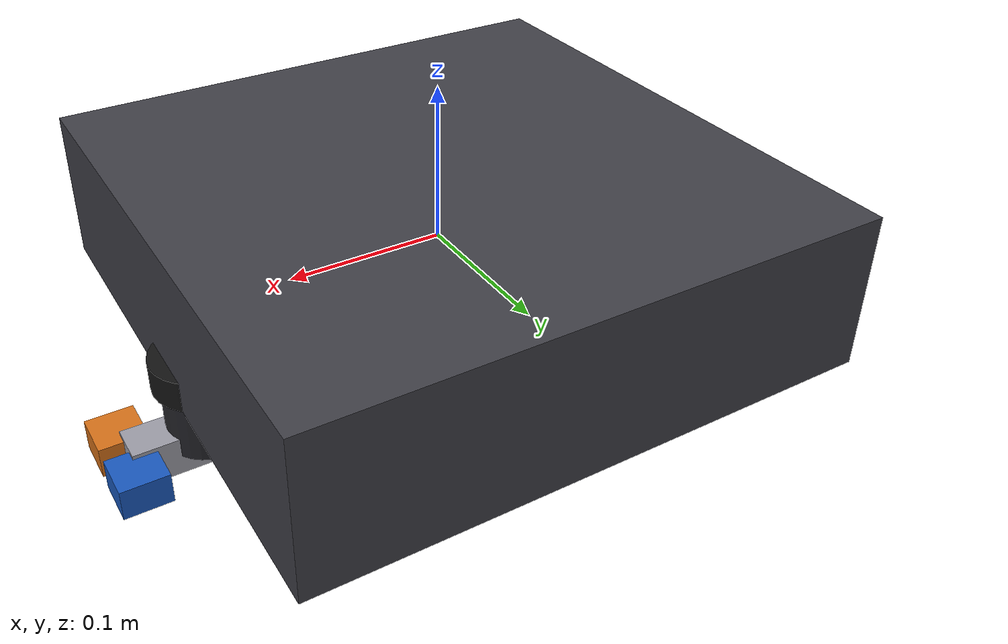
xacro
<?xml version="1.0"?>
<robot name="c3_drone_with_gimbal" xmlns:xacro="http://www.ros.org/wiki/xacro">
  <xacro:arg name="parent_link" default="base_link"/>
  <xacro:arg name="gimbal_mount_xyz" default="0.16 0.0 -0.04"/>
  <xacro:arg name="gimbal_mount_rpy" default="0 0 0"/>
  <xacro:arg name="tc_camera_xyz" default="0.050 0.020 0.0"/>
  <xacro:arg name="tc_camera_rpy" default="0 0 0"/>
  <xacro:arg name="gated_camera_xyz" default="0.050 -0.020 0.0"/>
  <xacro:arg name="gated_camera_rpy" default="0 0 0"/>

  <link name="base_link">
    <inertial>
      <origin xyz="0 0 0" rpy="0 0 0"/>
      <mass value="1.5"/>
      <inertia ixx="0.02" ixy="0.0" ixz="0.0" iyy="0.02" iyz="0.0" izz="0.04"/>
    </inertial>
    <visual>
      <origin xyz="0 0 0" rpy="0 0 0"/>
      <geometry>
        <box size="0.36 0.36 0.10"/>
      </geometry>
      <material name="drone_gray">
        <color rgba="0.25 0.25 0.28 1.0"/>
      </material>
    </visual>
    <collision>
      <origin xyz="0 0 0" rpy="0 0 0"/>
      <geometry>
        <box size="0.36 0.36 0.10"/>
      </geometry>
    </collision>
  </link>

  <joint name="gimbal_mount_joint" type="fixed">
    <parent link="$(arg parent_link)"/>
    <child link="gimbal_base_link"/>
    <origin xyz="$(arg gimbal_mount_xyz)" rpy="$(arg gimbal_mount_rpy)"/>
  </joint>

  <link name="gimbal_base_link">
    <inertial>
      <origin xyz="0 0 0" rpy="0 0 0"/>
      <mass value="0.18"/>
      <inertia ixx="0.00025" ixy="0.0" ixz="0.0" iyy="0.00025" iyz="0.0" izz="0.00035"/>
    </inertial>
    <visual>
      <origin xyz="0 0 0" rpy="0 0 0"/>
      <geometry>
        <cylinder radius="0.030" length="0.020"/>
      </geometry>
      <material name="gimbal_black">
        <color rgba="0.08 0.08 0.08 1.0"/>
      </material>
    </visual>
    <collision>
      <origin xyz="0 0 0" rpy="0 0 0"/>
      <geometry>
        <cylinder radius="0.030" length="0.020"/>
      </geometry>
    </collision>
  </link>

  <joint name="gimbal_yaw_joint" type="revolute">
    <parent link="gimbal_base_link"/>
    <child link="gimbal_yaw_link"/>
    <origin xyz="0 0 0" rpy="0 0 0"/>
    <axis xyz="0 0 1"/>
    <limit lower="-2.4" upper="2.4" effort="2.0" velocity="1.2"/>
    <dynamics damping="0.2" friction="0.02"/>
  </joint>

  <link name="gimbal_yaw_link">
    <inertial>
      <origin xyz="0 0 0" rpy="0 0 0"/>
      <mass value="0.14"/>
      <inertia ixx="0.00015" ixy="0.0" ixz="0.0" iyy="0.00015" iyz="0.0" izz="0.00025"/>
    </inertial>
    <visual>
      <origin xyz="0 0 -0.025" rpy="0 0 0"/>
      <geometry>
        <cylinder radius="0.025" length="0.050"/>
      </geometry>
      <material name="gimbal_dark">
        <color rgba="0.14 0.14 0.16 1.0"/>
      </material>
    </visual>
    <collision>
      <origin xyz="0 0 -0.025" rpy="0 0 0"/>
      <geometry>
        <cylinder radius="0.025" length="0.050"/>
      </geometry>
    </collision>
  </link>

  <joint name="gimbal_pitch_joint" type="revolute">
    <parent link="gimbal_yaw_link"/>
    <child link="gimbal_pitch_link"/>
    <origin xyz="0 0 -0.050" rpy="0 0 0"/>
    <axis xyz="0 1 0"/>
    <limit lower="-0.8" upper="0.6" effort="2.0" velocity="1.0"/>
    <dynamics damping="0.2" friction="0.02"/>
  </joint>

  <link name="gimbal_pitch_link">
    <inertial>
      <origin xyz="0.015 0 0" rpy="0 0 0"/>
      <mass value="0.12"/>
      <inertia ixx="0.00010" ixy="0.0" ixz="0.0" iyy="0.00012" iyz="0.0" izz="0.00009"/>
    </inertial>
    <visual>
      <origin xyz="0.020 0 0" rpy="0 0 0"/>
      <geometry>
        <box size="0.060 0.025 0.025"/>
      </geometry>
      <material name="gimbal_light">
        <color rgba="0.62 0.62 0.66 1.0"/>
      </material>
    </visual>
    <collision>
      <origin xyz="0.020 0 0" rpy="0 0 0"/>
      <geometry>
        <box size="0.060 0.025 0.025"/>
      </geometry>
    </collision>
  </link>

  <!-- TC 物理安装点：统一挂在云台 pitch 轴下，作为外部相机包的 TF 绑定接口 -->
  <joint name="tc_camera_joint" type="fixed">
    <parent link="gimbal_pitch_link"/>
    <child link="tc_camera_link"/>
    <origin xyz="$(arg tc_camera_xyz)" rpy="$(arg tc_camera_rpy)"/>
  </joint>

  <link name="tc_camera_link">
    <inertial>
      <origin xyz="0 0 0" rpy="0 0 0"/>
      <mass value="0.05"/>
      <inertia ixx="0.00002" ixy="0.0" ixz="0.0" iyy="0.00002" iyz="0.0" izz="0.00002"/>
    </inertial>
    <visual>
      <origin xyz="0 0 0" rpy="0 0 0"/>
      <geometry>
        <box size="0.030 0.030 0.020"/>
      </geometry>
      <material name="camera_blue">
        <color rgba="0.1 0.35 0.75 1.0"/>
      </material>
    </visual>
    <collision>
      <origin xyz="0 0 0" rpy="0 0 0"/>
      <geometry>
        <box size="0.030 0.030 0.020"/>
      </geometry>
    </collision>
  </link>

  <!-- GC 物理安装点：统一挂在云台 pitch 轴下，作为外部相机包的 TF 绑定接口 -->
  <joint name="gated_camera_joint" type="fixed">
    <parent link="gimbal_pitch_link"/>
    <child link="gated_camera_link"/>
    <origin xyz="$(arg gated_camera_xyz)" rpy="$(arg gated_camera_rpy)"/>
  </joint>

  <link name="gated_camera_link">
    <inertial>
      <origin xyz="0 0 0" rpy="0 0 0"/>
      <mass value="0.05"/>
      <inertia ixx="0.00002" ixy="0.0" ixz="0.0" iyy="0.00002" iyz="0.0" izz="0.00002"/>
    </inertial>
    <visual>
      <origin xyz="0 0 0" rpy="0 0 0"/>
      <geometry>
        <box size="0.030 0.030 0.020"/>
      </geometry>
      <material name="camera_orange">
        <color rgba="0.85 0.45 0.10 1.0"/>
      </material>
    </visual>
    <collision>
      <origin xyz="0 0 0" rpy="0 0 0"/>
      <geometry>
        <box size="0.030 0.030 0.020"/>
      </geometry>
    </collision>
  </link>

  <joint name="tc_optical_joint" type="fixed">
    <parent link="tc_camera_link"/>
    <child link="tc_camera_optical_frame"/>
    <origin xyz="0 0 0" rpy="-1.57079632679 0 -1.57079632679"/>
  </joint>
  <link name="tc_camera_optical_frame"/>

  <joint name="gated_optical_joint" type="fixed">
    <parent link="gated_camera_link"/>
    <child link="gated_camera_optical_frame"/>
    <origin xyz="0 0 0" rpy="-1.57079632679 0 -1.57079632679"/>
  </joint>
  <link name="gated_camera_optical_frame"/>
</robot>
